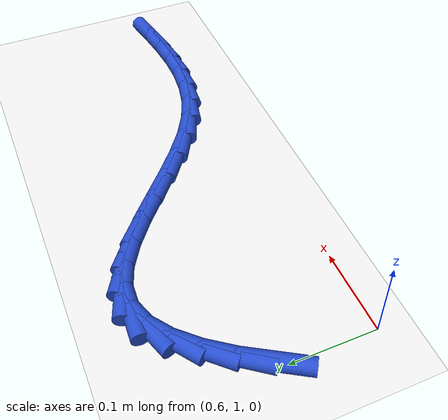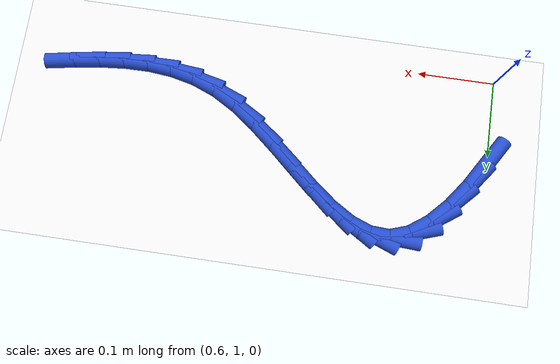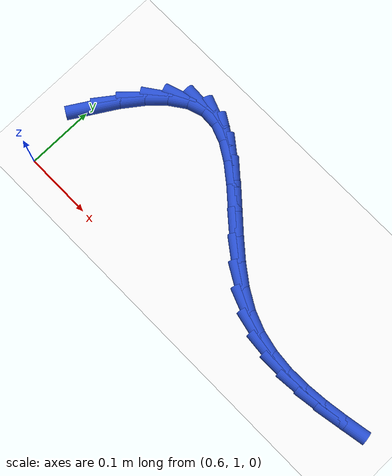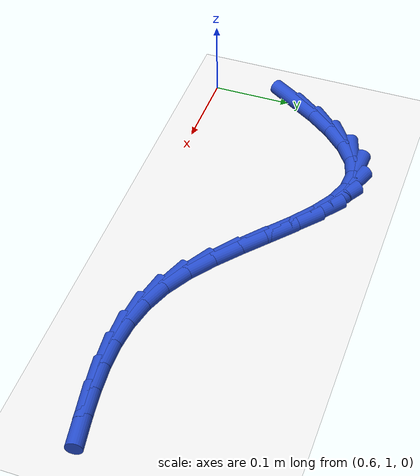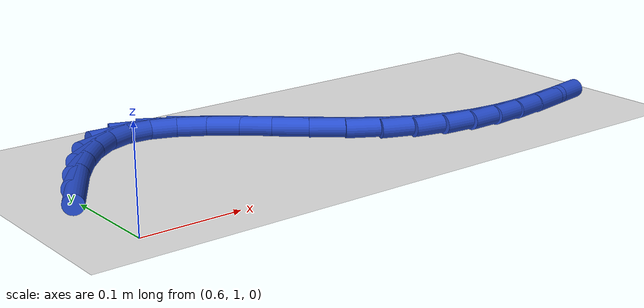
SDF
<sdf version="1.6">
 <world name="default">
  <model name="ground_plane">
   <static>1</static>
   <link name="link">
    <collision name="collision">
     <geometry><plane><normal>0 0 1</normal><size>100 100</size></plane></geometry>
     <surface><friction><ode><mu>100</mu><mu2>50</mu2></ode></friction></surface>
    </collision>
    <visual name="visual">
     <cast_shadows>0</cast_shadows>
     <geometry><plane><normal>0 0 1</normal><size>100 100</size></plane></geometry>
     <material>
      <script><uri>file://media/materials/scripts/gazebo.material</uri><name>Gazebo/WhiteGlow</name></script>
     </material>
    </visual>
   </link>
  </model>
  <model name="line">
   <link name="link_41">
    <pose>0.6035368138489531 1.1124265107854618 0.01 0 1.57 1.0186679077220195</pose>
    <collision name="collision">
     <geometry><cylinder><radius>0.01</radius><length>0.08</length></cylinder></geometry>
    </collision>
    <visual name="visual">
     <material>
      <script><name>Gazebo/Blue</name><uri>file://media/materials/scripts/gazebo.material</uri></script>
     </material>
     <geometry><cylinder><radius>0.01</radius><length>0.08</length></cylinder></geometry>
    </visual>
   </link>
   <link name="link_42">
    <pose>0.622689699532593 1.1435169633886817 0.01 0 1.57 0.9290981065030819</pose>
    <collision name="collision">
     <geometry><cylinder><radius>0.01</radius><length>0.08</length></cylinder></geometry>
    </collision>
    <visual name="visual">
     <material>
      <script><name>Gazebo/Blue</name><uri>file://media/materials/scripts/gazebo.material</uri></script>
     </material>
     <geometry><cylinder><radius>0.01</radius><length>0.08</length></cylinder></geometry>
    </visual>
   </link>
   <link name="link_43">
    <pose>0.644064093136141 1.1721234563811687 0.01 0 1.57 0.8046807505942752</pose>
    <collision name="collision">
     <geometry><cylinder><radius>0.01</radius><length>0.08</length></cylinder></geometry>
    </collision>
    <visual name="visual">
     <material>
      <script><name>Gazebo/Blue</name><uri>file://media/materials/scripts/gazebo.material</uri></script>
     </material>
     <geometry><cylinder><radius>0.01</radius><length>0.08</length></cylinder></geometry>
    </visual>
   </link>
   <link name="link_44">
    <pose>0.6671488437686505 1.1961160933711785 0.01 0 1.57 0.6176050474102868</pose>
    <collision name="collision">
     <geometry><cylinder><radius>0.01</radius><length>0.08</length></cylinder></geometry>
    </collision>
    <visual name="visual">
     <material>
      <script><name>Gazebo/Blue</name><uri>file://media/materials/scripts/gazebo.material</uri></script>
     </material>
     <geometry><cylinder><radius>0.01</radius><length>0.08</length></cylinder></geometry>
    </visual>
   </link>
   <link name="link_45">
    <pose>0.6914328005391747 1.213364977966965 0.01 0 1.57 0.32397197904822717</pose>
    <collision name="collision">
     <geometry><cylinder><radius>0.01</radius><length>0.08</length></cylinder></geometry>
    </collision>
    <visual name="visual">
     <material>
      <script><name>Gazebo/Blue</name><uri>file://media/materials/scripts/gazebo.material</uri></script>
     </material>
     <geometry><cylinder><radius>0.01</radius><length>0.08</length></cylinder></geometry>
    </visual>
   </link>
   <link name="link_46">
    <pose>0.7164063850445715 1.2217511929547278 0.01 0 1.57 -0.053096904073693475</pose>
    <collision name="collision">
     <geometry><cylinder><radius>0.01</radius><length>0.08</length></cylinder></geometry>
    </collision>
    <visual name="visual">
     <material>
      <script><name>Gazebo/Blue</name><uri>file://media/materials/scripts/gazebo.material</uri></script>
     </material>
     <geometry><cylinder><radius>0.01</radius><length>0.08</length></cylinder></geometry>
    </visual>
   </link>
   <link name="link_47">
    <pose>0.7417389103089467 1.2204048488120323 0.01 0 1.57 -0.3562527001279768</pose>
    <collision name="collision">
     <geometry><cylinder><radius>0.01</radius><length>0.08</length></cylinder></geometry>
    </collision>
    <visual name="visual">
     <material>
      <script><name>Gazebo/Blue</name><uri>file://media/materials/scripts/gazebo.material</uri></script>
     </material>
     <geometry><cylinder><radius>0.01</radius><length>0.08</length></cylinder></geometry>
    </visual>
   </link>
   <link name="link_48">
    <pose>0.767441164794041 1.2108402523085313 0.01 0 1.57 -0.5495907595236915</pose>
    <collision name="collision">
     <geometry><cylinder><radius>0.01</radius><length>0.08</length></cylinder></geometry>
    </collision>
    <visual name="visual">
     <material>
      <script><name>Gazebo/Blue</name><uri>file://media/materials/scripts/gazebo.material</uri></script>
     </material>
     <geometry><cylinder><radius>0.01</radius><length>0.08</length></cylinder></geometry>
    </visual>
   </link>
   <link name="link_49">
    <pose>0.7935623513456459 1.1948399211067307 0.01 0 1.57 -0.6604093330664472</pose>
    <collision name="collision">
     <geometry><cylinder><radius>0.01</radius><length>0.08</length></cylinder></geometry>
    </collision>
    <visual name="visual">
     <material>
      <script><name>Gazebo/Blue</name><uri>file://media/materials/scripts/gazebo.material</uri></script>
     </material>
     <geometry><cylinder><radius>0.01</radius><length>0.08</length></cylinder></geometry>
    </visual>
   </link>
   <link name="link_50">
    <pose>0.820151672809553 1.174186372869136 0.01 0 1.57 -0.7147604544904358</pose>
    <collision name="collision">
     <geometry><cylinder><radius>0.01</radius><length>0.08</length></cylinder></geometry>
    </collision>
    <visual name="visual">
     <material>
      <script><name>Gazebo/Blue</name><uri>file://media/materials/scripts/gazebo.material</uri></script>
     </material>
     <geometry><cylinder><radius>0.01</radius><length>0.08</length></cylinder></geometry>
    </visual>
   </link>
   <link name="link_51">
    <pose>0.8472583320315544 1.1506621252582538 0.01 0 1.57 -0.7269254732156176</pose>
    <collision name="collision">
     <geometry><cylinder><radius>0.01</radius><length>0.08</length></cylinder></geometry>
    </collision>
    <visual name="visual">
     <material>
      <script><name>Gazebo/Blue</name><uri>file://media/materials/scripts/gazebo.material</uri></script>
     </material>
     <geometry><cylinder><radius>0.01</radius><length>0.08</length></cylinder></geometry>
    </visual>
   </link>
   <link name="link_52">
    <pose>0.8749315318574409 1.1260496959365887 0.01 0 1.57 -0.7018714830330934</pose>
    <collision name="collision">
     <geometry><cylinder><radius>0.01</radius><length>0.08</length></cylinder></geometry>
    </collision>
    <visual name="visual">
     <material>
      <script><name>Gazebo/Blue</name><uri>file://media/materials/scripts/gazebo.material</uri></script>
     </material>
     <geometry><cylinder><radius>0.01</radius><length>0.08</length></cylinder></geometry>
    </visual>
   </link>
   <link name="link_53">
    <pose>0.9032204751330042 1.1021316025666474 0.01 0 1.57 -0.6374130631680811</pose>
    <collision name="collision">
     <geometry><cylinder><radius>0.01</radius><length>0.08</length></cylinder></geometry>
    </collision>
    <visual name="visual">
     <material>
      <script><name>Gazebo/Blue</name><uri>file://media/materials/scripts/gazebo.material</uri></script>
     </material>
     <geometry><cylinder><radius>0.01</radius><length>0.08</length></cylinder></geometry>
    </visual>
   </link>
   <link name="link_54">
    <pose>0.9321743647040365 1.0806903628109354 0.01 0 1.57 -0.5250140542140111</pose>
    <collision name="collision">
     <geometry><cylinder><radius>0.01</radius><length>0.08</length></cylinder></geometry>
    </collision>
    <visual name="visual">
     <material>
      <script><name>Gazebo/Blue</name><uri>file://media/materials/scripts/gazebo.material</uri></script>
     </material>
     <geometry><cylinder><radius>0.01</radius><length>0.08</length></cylinder></geometry>
    </visual>
   </link>
   <link name="link_55">
    <pose>0.9618422320724405 1.0635055813814802 0.01 0 1.57 -0.371762286327902</pose>
    <collision name="collision">
     <geometry><cylinder><radius>0.01</radius><length>0.08</length></cylinder></geometry>
    </collision>
    <visual name="visual">
     <material>
      <script><name>Gazebo/Blue</name><uri>file://media/materials/scripts/gazebo.material</uri></script>
     </material>
     <geometry><cylinder><radius>0.01</radius><length>0.08</length></cylinder></geometry>
    </visual>
   </link>
   <link name="link_56">
    <pose>0.9922319347975153 1.0516568808850781 0.01 0 1.57 -0.2230528186521789</pose>
    <collision name="collision">
     <geometry><cylinder><radius>0.01</radius><length>0.08</length></cylinder></geometry>
    </collision>
    <visual name="visual">
     <material>
      <script><name>Gazebo/Blue</name><uri>file://media/materials/scripts/gazebo.material</uri></script>
     </material>
     <geometry><cylinder><radius>0.01</radius><length>0.08</length></cylinder></geometry>
    </visual>
   </link>
   <link name="link_57">
    <pose>1.0232569620585044 1.0446195639834082 0.01 0 1.57 -0.09396820062387937</pose>
    <collision name="collision">
     <geometry><cylinder><radius>0.01</radius><length>0.08</length></cylinder></geometry>
    </collision>
    <visual name="visual">
     <material>
      <script><name>Gazebo/Blue</name><uri>file://media/materials/scripts/gazebo.material</uri></script>
     </material>
     <geometry><cylinder><radius>0.01</radius><length>0.08</length></cylinder></geometry>
    </visual>
   </link>
   <link name="link_58">
    <pose>1.054817637082614 1.0416451041335186 0.01 0 1.57 0.010621671949531354</pose>
    <collision name="collision">
     <geometry><cylinder><radius>0.01</radius><length>0.08</length></cylinder></geometry>
    </collision>
    <visual name="visual">
     <material>
      <script><name>Gazebo/Blue</name><uri>file://media/materials/scripts/gazebo.material</uri></script>
     </material>
     <geometry><cylinder><radius>0.01</radius><length>0.08</length></cylinder></geometry>
    </visual>
   </link>
   <link name="link_59">
    <pose>1.0868142830970495 1.0419849747924583 0.01 0 1.57 0.0896265568161383</pose>
    <collision name="collision">
     <geometry><cylinder><radius>0.01</radius><length>0.08</length></cylinder></geometry>
    </collision>
    <visual name="visual">
     <material>
      <script><name>Gazebo/Blue</name><uri>file://media/materials/scripts/gazebo.material</uri></script>
     </material>
     <geometry><cylinder><radius>0.01</radius><length>0.08</length></cylinder></geometry>
    </visual>
   </link>
   <link name="link_60">
    <pose>1.1191472233290178 1.044890649417276 0.01 0 1.57 0.1440074333277709</pose>
    <collision name="collision">
     <geometry><cylinder><radius>0.01</radius><length>0.08</length></cylinder></geometry>
    </collision>
    <visual name="visual">
     <material>
      <script><name>Gazebo/Blue</name><uri>file://media/materials/scripts/gazebo.material</uri></script>
     </material>
     <geometry><cylinder><radius>0.01</radius><length>0.08</length></cylinder></geometry>
    </visual>
   </link>
   <link name="link_61">
    <pose>1.1517167810057243 1.0496136014650201 0.01 0 1.57 0.17526421718419646</pose>
    <collision name="collision">
     <geometry><cylinder><radius>0.01</radius><length>0.08</length></cylinder></geometry>
    </collision>
    <visual name="visual">
     <material>
      <script><name>Gazebo/Blue</name><uri>file://media/materials/scripts/gazebo.material</uri></script>
     </material>
     <geometry><cylinder><radius>0.01</radius><length>0.08</length></cylinder></geometry>
    </visual>
   </link>
  </model>
 </world>
</sdf>
